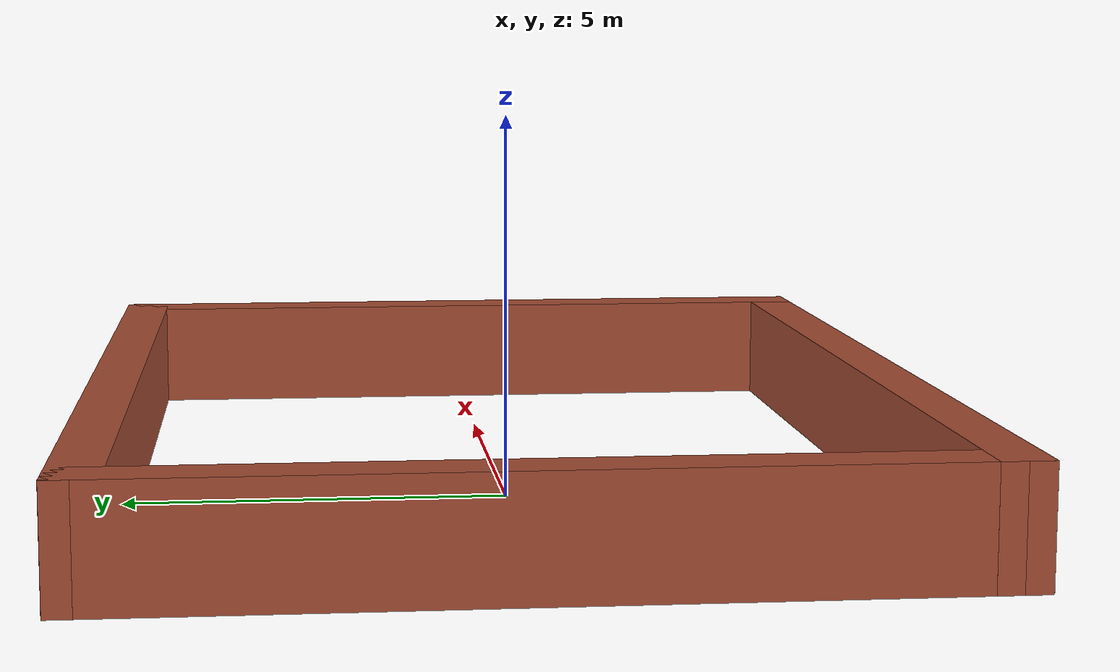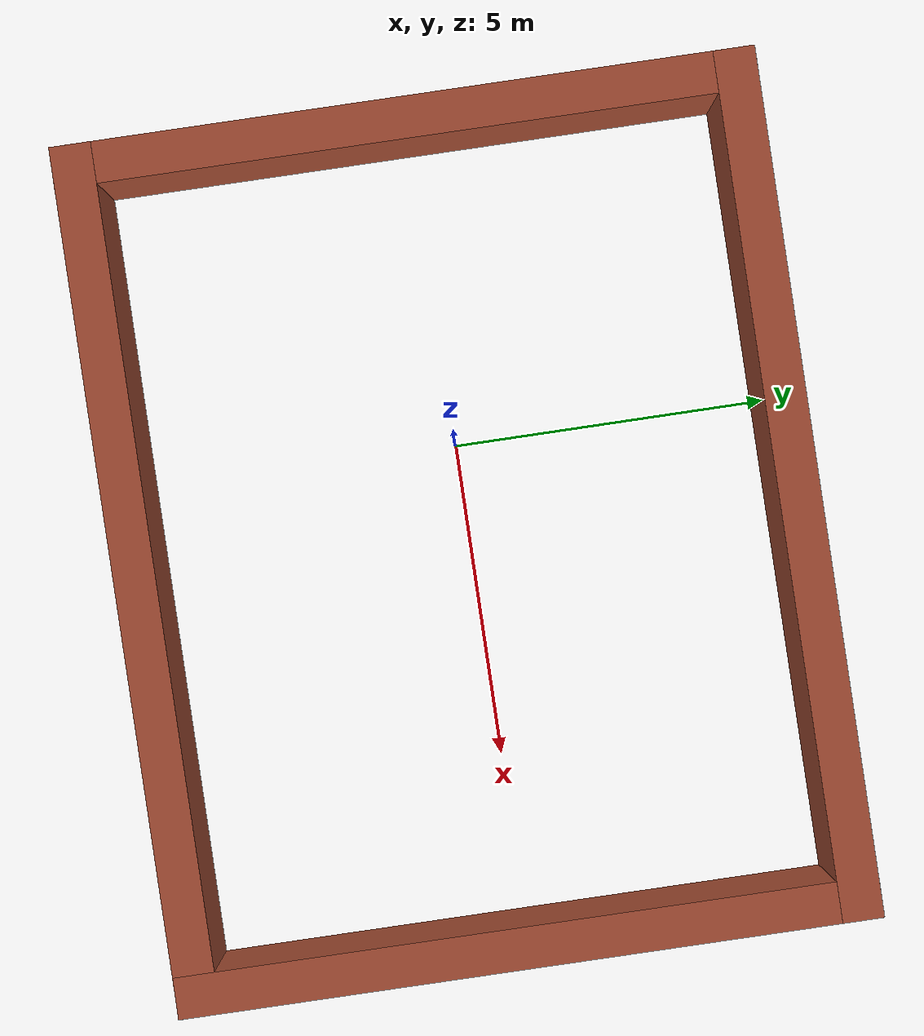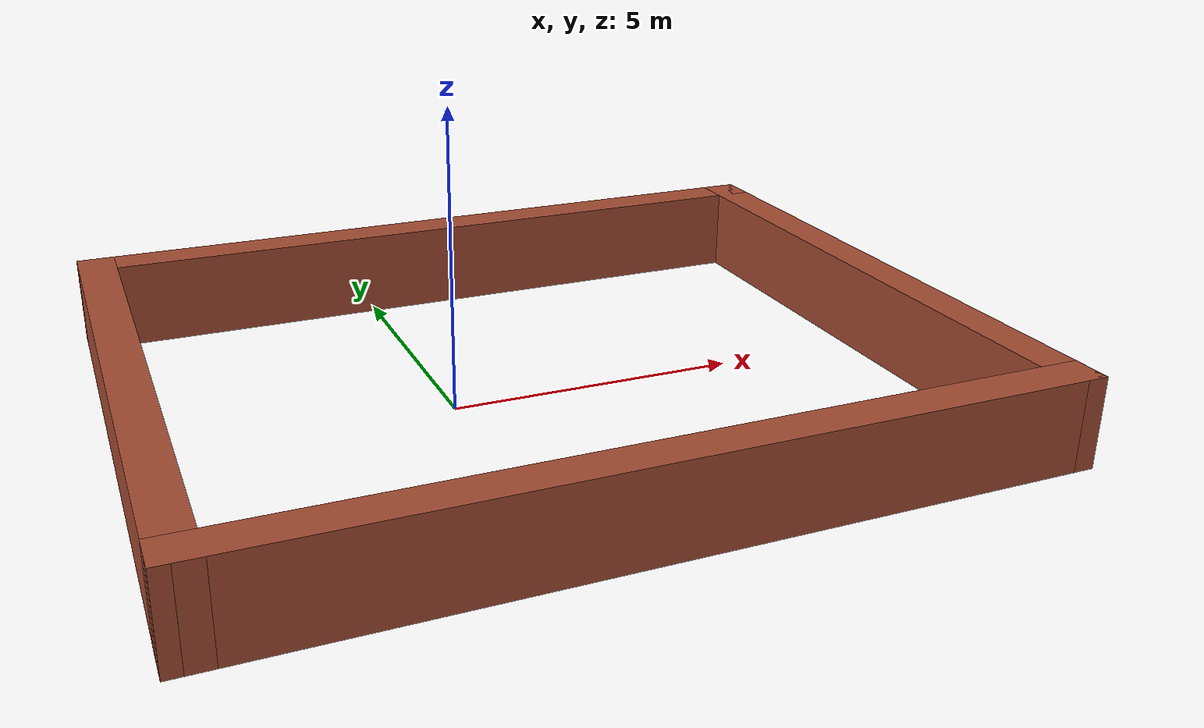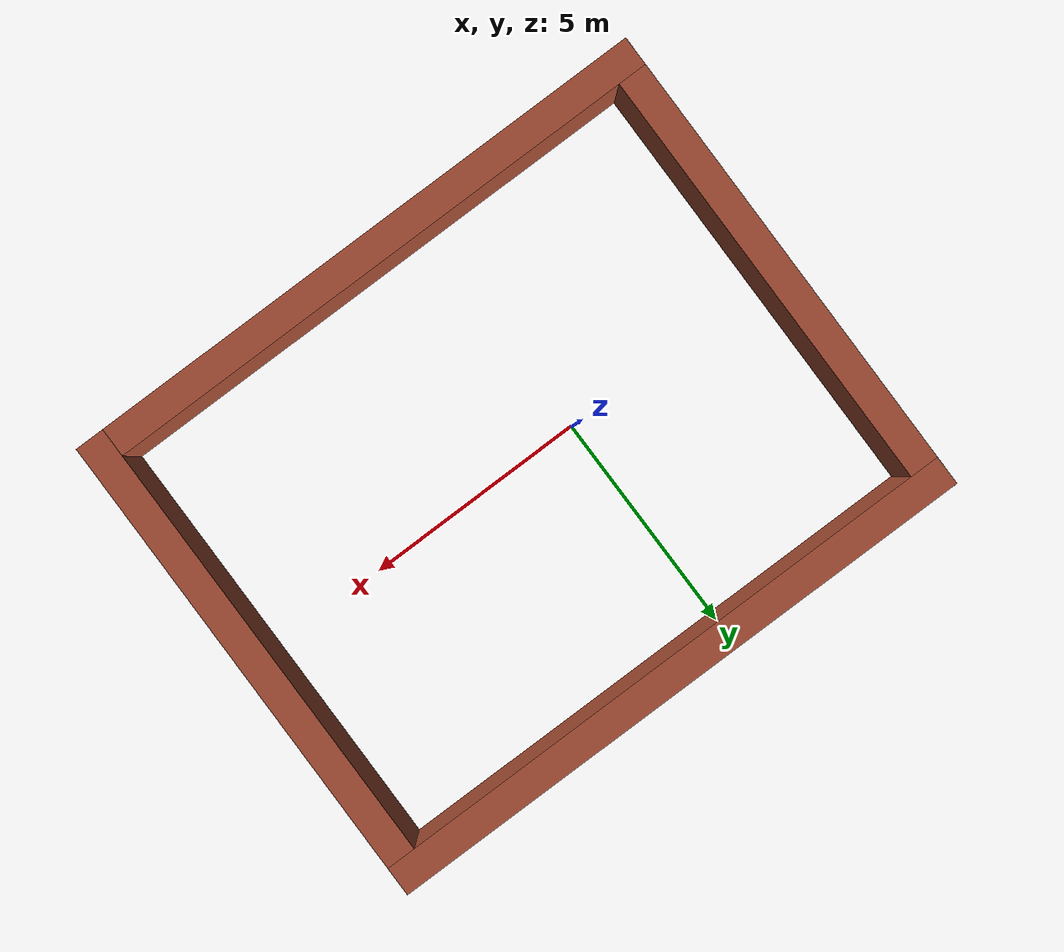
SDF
<?xml version='1.0'?>
<sdf version='1.7'>
  <model name='warehouse_1'>
    <pose>1.403 -0.029 0 0 -0 0</pose>
    <link name='Wall_0'>
      <collision name='Wall_0_Collision'>
        <geometry>
          <box>
            <size>13.54 0.65 1.5</size>
          </box>
        </geometry>
        <pose>0 0 0.75 0 -0 0</pose>
      </collision>
      <visual name='Wall_0_Visual'>
        <pose>0 0 0.75 0 -0 0</pose>
        <geometry>
          <box>
            <size>13.54 0.65 1.5</size>
          </box>
        </geometry>
        <material>
          <script>
            <uri>file://media/materials/scripts/gazebo.material</uri>
            <name>Gazebo/Bricks</name>
          </script>
          <ambient>1 1 1 1</ambient>
        </material>
        <meta>
          <layer>0</layer>
        </meta>
      </visual>
      <pose>0.019999 5.152 0 0 -0 0</pose>
    </link>
    <link name='Wall_1'>
      <collision name='Wall_1_Collision'>
        <geometry>
          <box>
            <size>10.9543 0.65 1.5</size>
          </box>
        </geometry>
        <pose>0 0 0.75 0 -0 0</pose>
      </collision>
      <visual name='Wall_1_Visual'>
        <pose>0 0 0.75 0 -0 0</pose>
        <geometry>
          <box>
            <size>10.9543 0.65 1.5</size>
          </box>
        </geometry>
        <material>
          <script>
            <uri>file://media/materials/scripts/gazebo.material</uri>
            <name>Gazebo/Bricks</name>
          </script>
          <ambient>1 1 1 1</ambient>
        </material>
        <meta>
          <layer>0</layer>
        </meta>
      </visual>
      <pose>6.445 -0 0 0 -0 -1.57468</pose>
    </link>
    <link name='Wall_2'>
      <collision name='Wall_2_Collision'>
        <geometry>
          <box>
            <size>13.54 0.65 1.5</size>
          </box>
        </geometry>
        <pose>0 0 0.75 0 -0 0</pose>
      </collision>
      <visual name='Wall_2_Visual'>
        <pose>0 0 0.75 0 -0 0</pose>
        <geometry>
          <box>
            <size>13.54 0.65 1.5</size>
          </box>
        </geometry>
        <material>
          <script>
            <uri>file://media/materials/scripts/gazebo.material</uri>
            <name>Gazebo/Bricks</name>
          </script>
          <ambient>1 1 1 1</ambient>
        </material>
        <meta>
          <layer>0</layer>
        </meta>
      </visual>
      <pose>-0.020001 -5.152 0 0 -0 3.14159</pose>
    </link>
    <link name='Wall_3'>
      <collision name='Wall_3_Collision'>
        <geometry>
          <box>
            <size>10.9545 0.65 1.5</size>
          </box>
        </geometry>
        <pose>0 0 0.75 0 -0 0</pose>
      </collision>
      <visual name='Wall_3_Visual'>
        <pose>0 0 0.75 0 -0 0</pose>
        <geometry>
          <box>
            <size>10.9545 0.65 1.5</size>
          </box>
        </geometry>
        <material>
          <script>
            <uri>file://media/materials/scripts/gazebo.material</uri>
            <name>Gazebo/Bricks</name>
          </script>
          <ambient>1 1 1 1</ambient>
        </material>
        <meta>
          <layer>0</layer>
        </meta>
      </visual>
      <pose>-6.445 -0 0 0 -0 1.56691</pose>
    </link>
    <static>1</static>
  </model>
</sdf>
